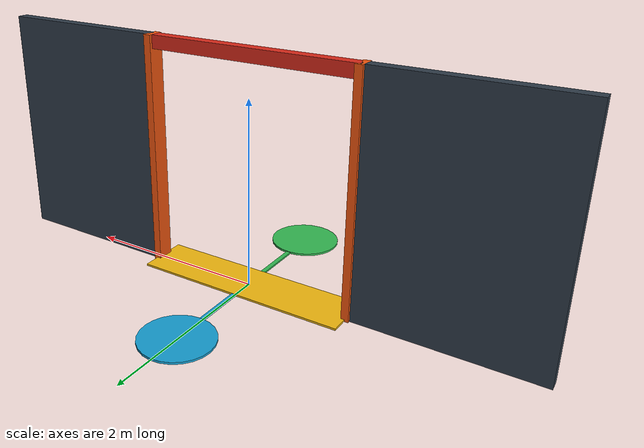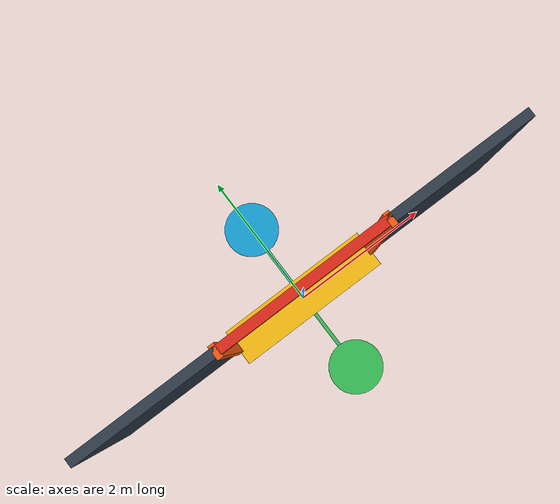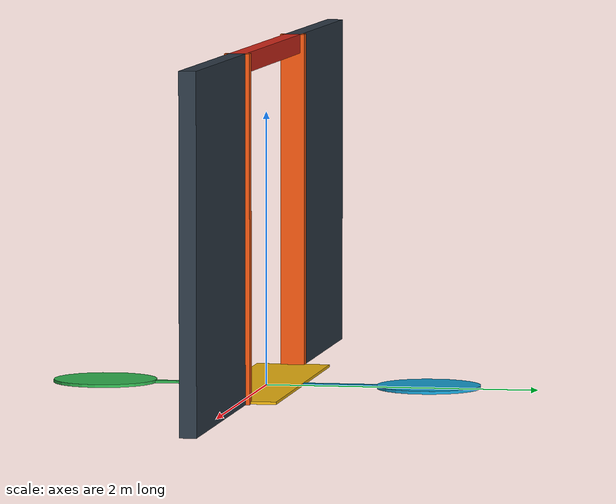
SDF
<?xml version="1.0" ?>
<sdf version="1.9">
  <model name="fixed_attitude_gate">
    <static>true</static>
    <link name="physical_gate">
      <collision name="left_wall_collision">
        <pose>-2.10 0 1.25 0 0 0</pose>
        <geometry><box><size>1.90 0.12 2.50</size></box></geometry>
      </collision>
      <collision name="right_wall_collision">
        <pose>2.10 0 1.25 0 0 0</pose>
        <geometry><box><size>1.90 0.12 2.50</size></box></geometry>
      </collision>
      <collision name="top_bar_collision">
        <pose>0 0 2.43 0 0 0</pose>
        <geometry><box><size>2.30 0.12 0.14</size></box></geometry>
      </collision>
      <visual name="left_wall">
        <pose>-2.10 0 1.25 0 0 0</pose>
        <geometry><box><size>1.90 0.12 2.50</size></box></geometry>
        <material>
          <ambient>0.12 0.16 0.20 1</ambient>
          <diffuse>0.18 0.23 0.28 1</diffuse>
        </material>
      </visual>
      <visual name="right_wall">
        <pose>2.10 0 1.25 0 0 0</pose>
        <geometry><box><size>1.90 0.12 2.50</size></box></geometry>
        <material>
          <ambient>0.12 0.16 0.20 1</ambient>
          <diffuse>0.18 0.23 0.28 1</diffuse>
        </material>
      </visual>
      <visual name="top_bar">
        <pose>0 0 2.43 0 0 0</pose>
        <geometry><box><size>2.30 0.12 0.14</size></box></geometry>
        <material>
          <ambient>0.85 0.16 0.10 1</ambient>
          <diffuse>0.85 0.16 0.10 1</diffuse>
        </material>
      </visual>
      <visual name="left_edge">
        <pose>-1.15 0 1.25 0 0 0</pose>
        <geometry><box><size>0.08 0.18 2.50</size></box></geometry>
        <material><ambient>0.95 0.34 0.06 1</ambient><diffuse>0.95 0.34 0.06 1</diffuse></material>
      </visual>
      <visual name="right_edge">
        <pose>1.15 0 1.25 0 0 0</pose>
        <geometry><box><size>0.08 0.18 2.50</size></box></geometry>
        <material><ambient>0.95 0.34 0.06 1</ambient><diffuse>0.95 0.34 0.06 1</diffuse></material>
      </visual>
      <visual name="gate_center_marker">
        <pose>0 0 0.012 0 0 0</pose>
        <geometry><box><size>2.30 0.55 0.02</size></box></geometry>
        <material><ambient>0.95 0.72 0.06 1</ambient><diffuse>0.95 0.72 0.06 1</diffuse></material>
      </visual>
      <visual name="target_b_marker">
        <pose>0 1.20 0.013 0 0 0</pose>
        <geometry><cylinder><radius>0.38</radius><length>0.022</length></cylinder></geometry>
        <material><ambient>0.08 0.62 0.82 1</ambient><diffuse>0.08 0.62 0.82 1</diffuse></material>
      </visual>
      <visual name="target_c_marker">
        <pose>0 -1.20 0.013 0 0 0</pose>
        <geometry><cylinder><radius>0.38</radius><length>0.022</length></cylinder></geometry>
        <material><ambient>0.20 0.72 0.32 1</ambient><diffuse>0.20 0.72 0.32 1</diffuse></material>
      </visual>
      <visual name="course_line_positive">
        <pose>0 0.60 0.011 0 0 0</pose>
        <geometry><box><size>0.05 1.20 0.018</size></box></geometry>
        <material><ambient>0.08 0.62 0.82 1</ambient><diffuse>0.08 0.62 0.82 1</diffuse></material>
      </visual>
      <visual name="course_line_negative">
        <pose>0 -0.60 0.011 0 0 0</pose>
        <geometry><box><size>0.05 1.20 0.018</size></box></geometry>
        <material><ambient>0.20 0.72 0.32 1</ambient><diffuse>0.20 0.72 0.32 1</diffuse></material>
      </visual>
    </link>
  </model>
</sdf>
